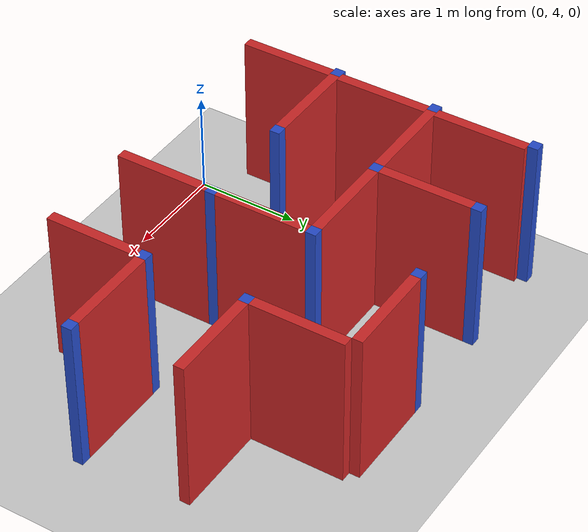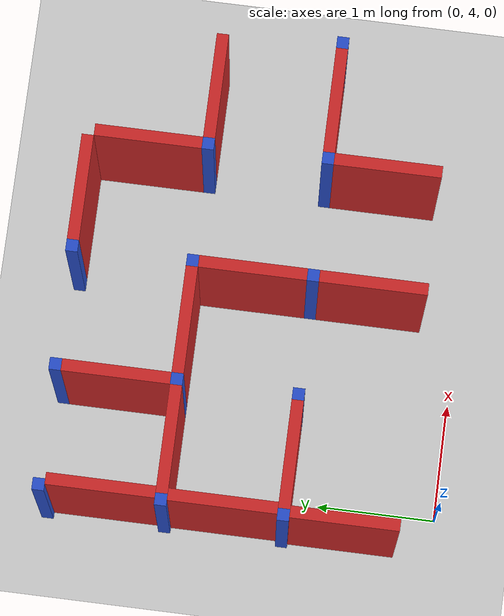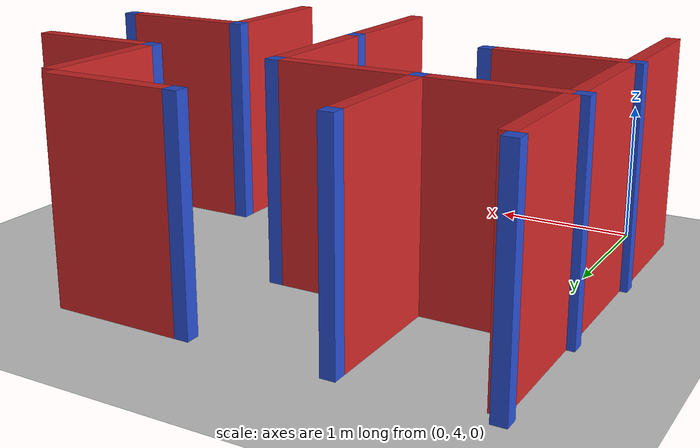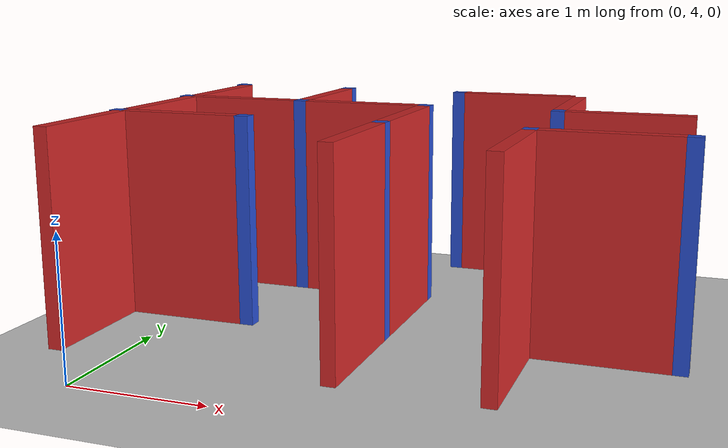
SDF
<sdf version="1.7">
 <world name="default">
  <model name="ground_plane">
   <static>1</static>
   <link name="link">
    <collision name="collision">
     <geometry><plane><normal>0 0 1</normal><size>100 100</size></plane></geometry>
     <surface><friction><ode><mu>100</mu><mu2>50</mu2></ode></friction></surface>
    </collision>
    <visual name="visual">
     <cast_shadows>0</cast_shadows>
     <geometry><plane><normal>0 0 1</normal><size>100 100</size></plane></geometry>
     <material>
      <script><uri>file://media/materials/scripts/gazebo.material</uri><name>Gazebo/Grey</name></script>
     </material>
    </visual>
   </link>
  </model>
  <model name="maze_demo">
   <link name="Joint_5_-10">
    <pose>5 -10 0 0 -0 0</pose>
    <visual name="Wall_2_Visual">
     <pose>0 0 0.75 0 -0 0</pose>
     <geometry><box><size>0.1 0.1 1.5</size></box></geometry>
     <material>
      <script><uri>file://media/materials/scripts/gazebo.material</uri><name>Gazebo/Blue</name></script>
      <ambient>0.996078 0.47451 0.0196078 1</ambient>
      <shader type="pixel"/>
     </material>
     <meta><layer>0</layer></meta>
    </visual>
    <collision name="Wall_2_Collision">
     <pose>0 0 0.75 0 -0 0</pose>
     <geometry><box><size>0.1 0.1 1.5</size></box></geometry>
     <surface>
      <friction>
       <ode><mu>1</mu><mu2>1</mu2><fdir1>0 0 0</fdir1><slip1>0</slip1><slip2>0</slip2></ode>
       <torsional>
        <coefficient>1</coefficient>
        <patch_radius>0</patch_radius>
        <surface_radius>0</surface_radius>
        <use_patch_radius>1</use_patch_radius>
        <ode><slip>0</slip></ode>
       </torsional>
      </friction>
      <bounce><restitution_coefficient>0</restitution_coefficient><threshold>1e+06</threshold></bounce>
      <contact>
       <collide_without_contact>0</collide_without_contact>
       <collide_without_contact_bitmask>1</collide_without_contact_bitmask>
       <collide_bitmask>1</collide_bitmask>
       <ode>
        <soft_cfm>0</soft_cfm>
        <soft_erp>0.2</soft_erp>
        <kp>1e+13</kp>
        <kd>1</kd>
        <max_vel>0.01</max_vel>
        <min_depth>0</min_depth>
       </ode>
       <bullet>
        <split_impulse>1</split_impulse>
        <split_impulse_penetration_threshold>-0.01</split_impulse_penetration_threshold>
        <soft_cfm>0</soft_cfm>
        <soft_erp>0.2</soft_erp>
        <kp>1e+13</kp>
        <kd>1</kd>
       </bullet>
      </contact>
     </surface>
    </collision>
   </link>
   <link name="Joint_5_-8">
    <pose>5 -8 0 0 -0 0</pose>
    <visual name="Wall_2_Visual">
     <pose>0 0 0.75 0 -0 0</pose>
     <geometry><box><size>0.1 0.1 1.5</size></box></geometry>
     <material>
      <script><uri>file://media/materials/scripts/gazebo.material</uri><name>Gazebo/Blue</name></script>
      <ambient>0.996078 0.47451 0.0196078 1</ambient>
      <shader type="pixel"/>
     </material>
     <meta><layer>0</layer></meta>
    </visual>
    <collision name="Wall_2_Collision">
     <pose>0 0 0.75 0 -0 0</pose>
     <geometry><box><size>0.1 0.1 1.5</size></box></geometry>
     <surface>
      <friction>
       <ode><mu>1</mu><mu2>1</mu2><fdir1>0 0 0</fdir1><slip1>0</slip1><slip2>0</slip2></ode>
       <torsional>
        <coefficient>1</coefficient>
        <patch_radius>0</patch_radius>
        <surface_radius>0</surface_radius>
        <use_patch_radius>1</use_patch_radius>
        <ode><slip>0</slip></ode>
       </torsional>
      </friction>
      <bounce><restitution_coefficient>0</restitution_coefficient><threshold>1e+06</threshold></bounce>
      <contact>
       <collide_without_contact>0</collide_without_contact>
       <collide_without_contact_bitmask>1</collide_without_contact_bitmask>
       <collide_bitmask>1</collide_bitmask>
       <ode>
        <soft_cfm>0</soft_cfm>
        <soft_erp>0.2</soft_erp>
        <kp>1e+13</kp>
        <kd>1</kd>
        <max_vel>0.01</max_vel>
        <min_depth>0</min_depth>
       </ode>
       <bullet>
        <split_impulse>1</split_impulse>
        <split_impulse_penetration_threshold>-0.01</split_impulse_penetration_threshold>
        <soft_cfm>0</soft_cfm>
        <soft_erp>0.2</soft_erp>
        <kp>1e+13</kp>
        <kd>1</kd>
       </bullet>
      </contact>
     </surface>
    </collision>
   </link>
   <link name="Joint_5_-9">
    <pose>5 -9 0 0 -0 0</pose>
    <visual name="Wall_2_Visual">
     <pose>0 0 0.75 0 -0 0</pose>
     <geometry><box><size>0.1 0.1 1.5</size></box></geometry>
     <material>
      <script><uri>file://media/materials/scripts/gazebo.material</uri><name>Gazebo/Blue</name></script>
      <ambient>0.996078 0.47451 0.0196078 1</ambient>
      <shader type="pixel"/>
     </material>
     <meta><layer>0</layer></meta>
    </visual>
    <collision name="Wall_2_Collision">
     <pose>0 0 0.75 0 -0 0</pose>
     <geometry><box><size>0.1 0.1 1.5</size></box></geometry>
     <surface>
      <friction>
       <ode><mu>1</mu><mu2>1</mu2><fdir1>0 0 0</fdir1><slip1>0</slip1><slip2>0</slip2></ode>
       <torsional>
        <coefficient>1</coefficient>
        <patch_radius>0</patch_radius>
        <surface_radius>0</surface_radius>
        <use_patch_radius>1</use_patch_radius>
        <ode><slip>0</slip></ode>
       </torsional>
      </friction>
      <bounce><restitution_coefficient>0</restitution_coefficient><threshold>1e+06</threshold></bounce>
      <contact>
       <collide_without_contact>0</collide_without_contact>
       <collide_without_contact_bitmask>1</collide_without_contact_bitmask>
       <collide_bitmask>1</collide_bitmask>
       <ode>
        <soft_cfm>0</soft_cfm>
        <soft_erp>0.2</soft_erp>
        <kp>1e+13</kp>
        <kd>1</kd>
        <max_vel>0.01</max_vel>
        <min_depth>0</min_depth>
       </ode>
       <bullet>
        <split_impulse>1</split_impulse>
        <split_impulse_penetration_threshold>-0.01</split_impulse_penetration_threshold>
        <soft_cfm>0</soft_cfm>
        <soft_erp>0.2</soft_erp>
        <kp>1e+13</kp>
        <kd>1</kd>
       </bullet>
      </contact>
     </surface>
    </collision>
   </link>
   <link name="Joint_6_-10">
    <pose>6 -10 0 0 -0 0</pose>
    <visual name="Wall_2_Visual">
     <pose>0 0 0.75 0 -0 0</pose>
     <geometry><box><size>0.1 0.1 1.5</size></box></geometry>
     <material>
      <script><uri>file://media/materials/scripts/gazebo.material</uri><name>Gazebo/Blue</name></script>
      <ambient>0.996078 0.47451 0.0196078 1</ambient>
      <shader type="pixel"/>
     </material>
     <meta><layer>0</layer></meta>
    </visual>
    <collision name="Wall_2_Collision">
     <pose>0 0 0.75 0 -0 0</pose>
     <geometry><box><size>0.1 0.1 1.5</size></box></geometry>
     <surface>
      <friction>
       <ode><mu>1</mu><mu2>1</mu2><fdir1>0 0 0</fdir1><slip1>0</slip1><slip2>0</slip2></ode>
       <torsional>
        <coefficient>1</coefficient>
        <patch_radius>0</patch_radius>
        <surface_radius>0</surface_radius>
        <use_patch_radius>1</use_patch_radius>
        <ode><slip>0</slip></ode>
       </torsional>
      </friction>
      <bounce><restitution_coefficient>0</restitution_coefficient><threshold>1e+06</threshold></bounce>
      <contact>
       <collide_without_contact>0</collide_without_contact>
       <collide_without_contact_bitmask>1</collide_without_contact_bitmask>
       <collide_bitmask>1</collide_bitmask>
       <ode>
        <soft_cfm>0</soft_cfm>
        <soft_erp>0.2</soft_erp>
        <kp>1e+13</kp>
        <kd>1</kd>
        <max_vel>0.01</max_vel>
        <min_depth>0</min_depth>
       </ode>
       <bullet>
        <split_impulse>1</split_impulse>
        <split_impulse_penetration_threshold>-0.01</split_impulse_penetration_threshold>
        <soft_cfm>0</soft_cfm>
        <soft_erp>0.2</soft_erp>
        <kp>1e+13</kp>
        <kd>1</kd>
       </bullet>
      </contact>
     </surface>
    </collision>
   </link>
   <link name="Joint_6_-8">
    <pose>6 -8 0 0 -0 0</pose>
    <visual name="Wall_2_Visual">
     <pose>0 0 0.75 0 -0 0</pose>
     <geometry><box><size>0.1 0.1 1.5</size></box></geometry>
     <material>
      <script><uri>file://media/materials/scripts/gazebo.material</uri><name>Gazebo/Blue</name></script>
      <ambient>0.996078 0.47451 0.0196078 1</ambient>
      <shader type="pixel"/>
     </material>
     <meta><layer>0</layer></meta>
    </visual>
    <collision name="Wall_2_Collision">
     <pose>0 0 0.75 0 -0 0</pose>
     <geometry><box><size>0.1 0.1 1.5</size></box></geometry>
     <surface>
      <friction>
       <ode><mu>1</mu><mu2>1</mu2><fdir1>0 0 0</fdir1><slip1>0</slip1><slip2>0</slip2></ode>
       <torsional>
        <coefficient>1</coefficient>
        <patch_radius>0</patch_radius>
        <surface_radius>0</surface_radius>
        <use_patch_radius>1</use_patch_radius>
        <ode><slip>0</slip></ode>
       </torsional>
      </friction>
      <bounce><restitution_coefficient>0</restitution_coefficient><threshold>1e+06</threshold></bounce>
      <contact>
       <collide_without_contact>0</collide_without_contact>
       <collide_without_contact_bitmask>1</collide_without_contact_bitmask>
       <collide_bitmask>1</collide_bitmask>
       <ode>
        <soft_cfm>0</soft_cfm>
        <soft_erp>0.2</soft_erp>
        <kp>1e+13</kp>
        <kd>1</kd>
        <max_vel>0.01</max_vel>
        <min_depth>0</min_depth>
       </ode>
       <bullet>
        <split_impulse>1</split_impulse>
        <split_impulse_penetration_threshold>-0.01</split_impulse_penetration_threshold>
        <soft_cfm>0</soft_cfm>
        <soft_erp>0.2</soft_erp>
        <kp>1e+13</kp>
        <kd>1</kd>
       </bullet>
      </contact>
     </surface>
    </collision>
   </link>
   <link name="Joint_6_-9">
    <pose>6 -9 0 0 -0 0</pose>
    <visual name="Wall_2_Visual">
     <pose>0 0 0.75 0 -0 0</pose>
     <geometry><box><size>0.1 0.1 1.5</size></box></geometry>
     <material>
      <script><uri>file://media/materials/scripts/gazebo.material</uri><name>Gazebo/Blue</name></script>
      <ambient>0.996078 0.47451 0.0196078 1</ambient>
      <shader type="pixel"/>
     </material>
     <meta><layer>0</layer></meta>
    </visual>
    <collision name="Wall_2_Collision">
     <pose>0 0 0.75 0 -0 0</pose>
     <geometry><box><size>0.1 0.1 1.5</size></box></geometry>
     <surface>
      <friction>
       <ode><mu>1</mu><mu2>1</mu2><fdir1>0 0 0</fdir1><slip1>0</slip1><slip2>0</slip2></ode>
       <torsional>
        <coefficient>1</coefficient>
        <patch_radius>0</patch_radius>
        <surface_radius>0</surface_radius>
        <use_patch_radius>1</use_patch_radius>
        <ode><slip>0</slip></ode>
       </torsional>
      </friction>
      <bounce><restitution_coefficient>0</restitution_coefficient><threshold>1e+06</threshold></bounce>
      <contact>
       <collide_without_contact>0</collide_without_contact>
       <collide_without_contact_bitmask>1</collide_without_contact_bitmask>
       <collide_bitmask>1</collide_bitmask>
       <ode>
        <soft_cfm>0</soft_cfm>
        <soft_erp>0.2</soft_erp>
        <kp>1e+13</kp>
        <kd>1</kd>
        <max_vel>0.01</max_vel>
        <min_depth>0</min_depth>
       </ode>
       <bullet>
        <split_impulse>1</split_impulse>
        <split_impulse_penetration_threshold>-0.01</split_impulse_penetration_threshold>
        <soft_cfm>0</soft_cfm>
        <soft_erp>0.2</soft_erp>
        <kp>1e+13</kp>
        <kd>1</kd>
       </bullet>
      </contact>
     </surface>
    </collision>
   </link>
   <link name="Joint_7_-10">
    <pose>7 -10 0 0 -0 0</pose>
    <visual name="Wall_2_Visual">
     <pose>0 0 0.75 0 -0 0</pose>
     <geometry><box><size>0.1 0.1 1.5</size></box></geometry>
     <material>
      <script><uri>file://media/materials/scripts/gazebo.material</uri><name>Gazebo/Blue</name></script>
      <ambient>0.996078 0.47451 0.0196078 1</ambient>
      <shader type="pixel"/>
     </material>
     <meta><layer>0</layer></meta>
    </visual>
    <collision name="Wall_2_Collision">
     <pose>0 0 0.75 0 -0 0</pose>
     <geometry><box><size>0.1 0.1 1.5</size></box></geometry>
     <surface>
      <friction>
       <ode><mu>1</mu><mu2>1</mu2><fdir1>0 0 0</fdir1><slip1>0</slip1><slip2>0</slip2></ode>
       <torsional>
        <coefficient>1</coefficient>
        <patch_radius>0</patch_radius>
        <surface_radius>0</surface_radius>
        <use_patch_radius>1</use_patch_radius>
        <ode><slip>0</slip></ode>
       </torsional>
      </friction>
      <bounce><restitution_coefficient>0</restitution_coefficient><threshold>1e+06</threshold></bounce>
      <contact>
       <collide_without_contact>0</collide_without_contact>
       <collide_without_contact_bitmask>1</collide_without_contact_bitmask>
       <collide_bitmask>1</collide_bitmask>
       <ode>
        <soft_cfm>0</soft_cfm>
        <soft_erp>0.2</soft_erp>
        <kp>1e+13</kp>
        <kd>1</kd>
        <max_vel>0.01</max_vel>
        <min_depth>0</min_depth>
       </ode>
       <bullet>
        <split_impulse>1</split_impulse>
        <split_impulse_penetration_threshold>-0.01</split_impulse_penetration_threshold>
        <soft_cfm>0</soft_cfm>
        <soft_erp>0.2</soft_erp>
        <kp>1e+13</kp>
        <kd>1</kd>
       </bullet>
      </contact>
     </surface>
    </collision>
   </link>
   <link name="Joint_7_-8">
    <pose>7 -8 0 0 -0 0</pose>
    <visual name="Wall_2_Visual">
     <pose>0 0 0.75 0 -0 0</pose>
     <geometry><box><size>0.1 0.1 1.5</size></box></geometry>
     <material>
      <script><uri>file://media/materials/scripts/gazebo.material</uri><name>Gazebo/Blue</name></script>
      <ambient>0.996078 0.47451 0.0196078 1</ambient>
      <shader type="pixel"/>
     </material>
     <meta><layer>0</layer></meta>
    </visual>
    <collision name="Wall_2_Collision">
     <pose>0 0 0.75 0 -0 0</pose>
     <geometry><box><size>0.1 0.1 1.5</size></box></geometry>
     <surface>
      <friction>
       <ode><mu>1</mu><mu2>1</mu2><fdir1>0 0 0</fdir1><slip1>0</slip1><slip2>0</slip2></ode>
       <torsional>
        <coefficient>1</coefficient>
        <patch_radius>0</patch_radius>
        <surface_radius>0</surface_radius>
        <use_patch_radius>1</use_patch_radius>
        <ode><slip>0</slip></ode>
       </torsional>
      </friction>
      <bounce><restitution_coefficient>0</restitution_coefficient><threshold>1e+06</threshold></bounce>
      <contact>
       <collide_without_contact>0</collide_without_contact>
       <collide_without_contact_bitmask>1</collide_without_contact_bitmask>
       <collide_bitmask>1</collide_bitmask>
       <ode>
        <soft_cfm>0</soft_cfm>
        <soft_erp>0.2</soft_erp>
        <kp>1e+13</kp>
        <kd>1</kd>
        <max_vel>0.01</max_vel>
        <min_depth>0</min_depth>
       </ode>
       <bullet>
        <split_impulse>1</split_impulse>
        <split_impulse_penetration_threshold>-0.01</split_impulse_penetration_threshold>
        <soft_cfm>0</soft_cfm>
        <soft_erp>0.2</soft_erp>
        <kp>1e+13</kp>
        <kd>1</kd>
       </bullet>
      </contact>
     </surface>
    </collision>
   </link>
   <link name="Joint_7_-9">
    <pose>7 -9 0 0 -0 0</pose>
    <visual name="Wall_2_Visual">
     <pose>0 0 0.75 0 -0 0</pose>
     <geometry><box><size>0.1 0.1 1.5</size></box></geometry>
     <material>
      <script><uri>file://media/materials/scripts/gazebo.material</uri><name>Gazebo/Blue</name></script>
      <ambient>0.996078 0.47451 0.0196078 1</ambient>
      <shader type="pixel"/>
     </material>
     <meta><layer>0</layer></meta>
    </visual>
    <collision name="Wall_2_Collision">
     <pose>0 0 0.75 0 -0 0</pose>
     <geometry><box><size>0.1 0.1 1.5</size></box></geometry>
     <surface>
      <friction>
       <ode><mu>1</mu><mu2>1</mu2><fdir1>0 0 0</fdir1><slip1>0</slip1><slip2>0</slip2></ode>
       <torsional>
        <coefficient>1</coefficient>
        <patch_radius>0</patch_radius>
        <surface_radius>0</surface_radius>
        <use_patch_radius>1</use_patch_radius>
        <ode><slip>0</slip></ode>
       </torsional>
      </friction>
      <bounce><restitution_coefficient>0</restitution_coefficient><threshold>1e+06</threshold></bounce>
      <contact>
       <collide_without_contact>0</collide_without_contact>
       <collide_without_contact_bitmask>1</collide_without_contact_bitmask>
       <collide_bitmask>1</collide_bitmask>
       <ode>
        <soft_cfm>0</soft_cfm>
        <soft_erp>0.2</soft_erp>
        <kp>1e+13</kp>
        <kd>1</kd>
        <max_vel>0.01</max_vel>
        <min_depth>0</min_depth>
       </ode>
       <bullet>
        <split_impulse>1</split_impulse>
        <split_impulse_penetration_threshold>-0.01</split_impulse_penetration_threshold>
        <soft_cfm>0</soft_cfm>
        <soft_erp>0.2</soft_erp>
        <kp>1e+13</kp>
        <kd>1</kd>
       </bullet>
      </contact>
     </surface>
    </collision>
   </link>
   <link name="Joint_8_-10">
    <pose>8 -10 0 0 -0 0</pose>
    <visual name="Wall_2_Visual">
     <pose>0 0 0.75 0 -0 0</pose>
     <geometry><box><size>0.1 0.1 1.5</size></box></geometry>
     <material>
      <script><uri>file://media/materials/scripts/gazebo.material</uri><name>Gazebo/Blue</name></script>
      <ambient>0.996078 0.47451 0.0196078 1</ambient>
      <shader type="pixel"/>
     </material>
     <meta><layer>0</layer></meta>
    </visual>
    <collision name="Wall_2_Collision">
     <pose>0 0 0.75 0 -0 0</pose>
     <geometry><box><size>0.1 0.1 1.5</size></box></geometry>
     <surface>
      <friction>
       <ode><mu>1</mu><mu2>1</mu2><fdir1>0 0 0</fdir1><slip1>0</slip1><slip2>0</slip2></ode>
       <torsional>
        <coefficient>1</coefficient>
        <patch_radius>0</patch_radius>
        <surface_radius>0</surface_radius>
        <use_patch_radius>1</use_patch_radius>
        <ode><slip>0</slip></ode>
       </torsional>
      </friction>
      <bounce><restitution_coefficient>0</restitution_coefficient><threshold>1e+06</threshold></bounce>
      <contact>
       <collide_without_contact>0</collide_without_contact>
       <collide_without_contact_bitmask>1</collide_without_contact_bitmask>
       <collide_bitmask>1</collide_bitmask>
       <ode>
        <soft_cfm>0</soft_cfm>
        <soft_erp>0.2</soft_erp>
        <kp>1e+13</kp>
        <kd>1</kd>
        <max_vel>0.01</max_vel>
        <min_depth>0</min_depth>
       </ode>
       <bullet>
        <split_impulse>1</split_impulse>
        <split_impulse_penetration_threshold>-0.01</split_impulse_penetration_threshold>
        <soft_cfm>0</soft_cfm>
        <soft_erp>0.2</soft_erp>
        <kp>1e+13</kp>
        <kd>1</kd>
       </bullet>
      </contact>
     </surface>
    </collision>
   </link>
   <link name="Joint_8_-9">
    <pose>8 -9 0 0 -0 0</pose>
    <visual name="Wall_2_Visual">
     <pose>0 0 0.75 0 -0 0</pose>
     <geometry><box><size>0.1 0.1 1.5</size></box></geometry>
     <material>
      <script><uri>file://media/materials/scripts/gazebo.material</uri><name>Gazebo/Blue</name></script>
      <ambient>0.996078 0.47451 0.0196078 1</ambient>
      <shader type="pixel"/>
     </material>
     <meta><layer>0</layer></meta>
    </visual>
    <collision name="Wall_2_Collision">
     <pose>0 0 0.75 0 -0 0</pose>
     <geometry><box><size>0.1 0.1 1.5</size></box></geometry>
     <surface>
      <friction>
       <ode><mu>1</mu><mu2>1</mu2><fdir1>0 0 0</fdir1><slip1>0</slip1><slip2>0</slip2></ode>
       <torsional>
        <coefficient>1</coefficient>
        <patch_radius>0</patch_radius>
        <surface_radius>0</surface_radius>
        <use_patch_radius>1</use_patch_radius>
        <ode><slip>0</slip></ode>
       </torsional>
      </friction>
      <bounce><restitution_coefficient>0</restitution_coefficient><threshold>1e+06</threshold></bounce>
      <contact>
       <collide_without_contact>0</collide_without_contact>
       <collide_without_contact_bitmask>1</collide_without_contact_bitmask>
       <collide_bitmask>1</collide_bitmask>
       <ode>
        <soft_cfm>0</soft_cfm>
        <soft_erp>0.2</soft_erp>
        <kp>1e+13</kp>
        <kd>1</kd>
        <max_vel>0.01</max_vel>
        <min_depth>0</min_depth>
       </ode>
       <bullet>
        <split_impulse>1</split_impulse>
        <split_impulse_penetration_threshold>-0.01</split_impulse_penetration_threshold>
        <soft_cfm>0</soft_cfm>
        <soft_erp>0.2</soft_erp>
        <kp>1e+13</kp>
        <kd>1</kd>
       </bullet>
      </contact>
     </surface>
    </collision>
   </link>
   <link name="Joint_9_-10">
    <pose>9 -10 0 0 -0 0</pose>
    <visual name="Wall_2_Visual">
     <pose>0 0 0.75 0 -0 0</pose>
     <geometry><box><size>0.1 0.1 1.5</size></box></geometry>
     <material>
      <script><uri>file://media/materials/scripts/gazebo.material</uri><name>Gazebo/Blue</name></script>
      <ambient>0.996078 0.47451 0.0196078 1</ambient>
      <shader type="pixel"/>
     </material>
     <meta><layer>0</layer></meta>
    </visual>
    <collision name="Wall_2_Collision">
     <pose>0 0 0.75 0 -0 0</pose>
     <geometry><box><size>0.1 0.1 1.5</size></box></geometry>
     <surface>
      <friction>
       <ode><mu>1</mu><mu2>1</mu2><fdir1>0 0 0</fdir1><slip1>0</slip1><slip2>0</slip2></ode>
       <torsional>
        <coefficient>1</coefficient>
        <patch_radius>0</patch_radius>
        <surface_radius>0</surface_radius>
        <use_patch_radius>1</use_patch_radius>
        <ode><slip>0</slip></ode>
       </torsional>
      </friction>
      <bounce><restitution_coefficient>0</restitution_coefficient><threshold>1e+06</threshold></bounce>
      <contact>
       <collide_without_contact>0</collide_without_contact>
       <collide_without_contact_bitmask>1</collide_without_contact_bitmask>
       <collide_bitmask>1</collide_bitmask>
       <ode>
        <soft_cfm>0</soft_cfm>
        <soft_erp>0.2</soft_erp>
        <kp>1e+13</kp>
        <kd>1</kd>
        <max_vel>0.01</max_vel>
        <min_depth>0</min_depth>
       </ode>
       <bullet>
        <split_impulse>1</split_impulse>
        <split_impulse_penetration_threshold>-0.01</split_impulse_penetration_threshold>
        <soft_cfm>0</soft_cfm>
        <soft_erp>0.2</soft_erp>
        <kp>1e+13</kp>
        <kd>1</kd>
       </bullet>
      </contact>
     </surface>
    </collision>
   </link>
   <link name="Wall_2_9_v">
    <pose>5.04815 -9.49999 0 0 -0 1.5708</pose>
    <visual name="Wall_0_Visual">
     <pose>0 0 0.75 0 -0 0</pose>
     <geometry><box><size>0.9 0.1 1.5</size></box></geometry>
     <material>
      <script><uri>file://media/materials/scripts/gazebo.material</uri><name>Gazebo/Red</name></script>
      <ambient>0.921569 0.807843 0.615686 1</ambient>
      <shader type="pixel"/>
     </material>
     <meta><layer>0</layer></meta>
    </visual>
    <collision name="Wall_0_Collision">
     <pose>0 0 0.75 0 -0 0</pose>
     <geometry><box><size>0.9 0.1 1.5</size></box></geometry>
     <surface>
      <friction>
       <ode><mu>1</mu><mu2>1</mu2><fdir1>0 0 0</fdir1><slip1>0</slip1><slip2>0</slip2></ode>
       <torsional>
        <coefficient>1</coefficient>
        <patch_radius>0</patch_radius>
        <surface_radius>0</surface_radius>
        <use_patch_radius>1</use_patch_radius>
        <ode><slip>0</slip></ode>
       </torsional>
      </friction>
      <bounce><restitution_coefficient>0</restitution_coefficient><threshold>1e+06</threshold></bounce>
      <contact>
       <collide_without_contact>0</collide_without_contact>
       <collide_without_contact_bitmask>1</collide_without_contact_bitmask>
       <collide_bitmask>1</collide_bitmask>
       <ode>
        <soft_cfm>0</soft_cfm>
        <soft_erp>0.2</soft_erp>
        <kp>1e+13</kp>
        <kd>1</kd>
        <max_vel>0.01</max_vel>
        <min_depth>0</min_depth>
       </ode>
       <bullet>
        <split_impulse>1</split_impulse>
        <split_impulse_penetration_threshold>-0.01</split_impulse_penetration_threshold>
        <soft_cfm>0</soft_cfm>
        <soft_erp>0.2</soft_erp>
        <kp>1e+13</kp>
        <kd>1</kd>
       </bullet>
      </contact>
     </surface>
    </collision>
   </link>
   <link name="Wall_3_8_v">
    <pose>5.05369 -8.49999 0 0 -0 1.5708</pose>
    <visual name="Wall_0_Visual">
     <pose>0 0 0.75 0 -0 0</pose>
     <geometry><box><size>0.9 0.1 1.5</size></box></geometry>
     <material>
      <script><uri>file://media/materials/scripts/gazebo.material</uri><name>Gazebo/Red</name></script>
      <ambient>0.921569 0.807843 0.615686 1</ambient>
      <shader type="pixel"/>
     </material>
     <meta><layer>0</layer></meta>
    </visual>
    <collision name="Wall_0_Collision">
     <pose>0 0 0.75 0 -0 0</pose>
     <geometry><box><size>0.9 0.1 1.5</size></box></geometry>
     <surface>
      <friction>
       <ode><mu>1</mu><mu2>1</mu2><fdir1>0 0 0</fdir1><slip1>0</slip1><slip2>0</slip2></ode>
       <torsional>
        <coefficient>1</coefficient>
        <patch_radius>0</patch_radius>
        <surface_radius>0</surface_radius>
        <use_patch_radius>1</use_patch_radius>
        <ode><slip>0</slip></ode>
       </torsional>
      </friction>
      <bounce><restitution_coefficient>0</restitution_coefficient><threshold>1e+06</threshold></bounce>
      <contact>
       <collide_without_contact>0</collide_without_contact>
       <collide_without_contact_bitmask>1</collide_without_contact_bitmask>
       <collide_bitmask>1</collide_bitmask>
       <ode>
        <soft_cfm>0</soft_cfm>
        <soft_erp>0.2</soft_erp>
        <kp>1e+13</kp>
        <kd>1</kd>
        <max_vel>0.01</max_vel>
        <min_depth>0</min_depth>
       </ode>
       <bullet>
        <split_impulse>1</split_impulse>
        <split_impulse_penetration_threshold>-0.01</split_impulse_penetration_threshold>
        <soft_cfm>0</soft_cfm>
        <soft_erp>0.2</soft_erp>
        <kp>1e+13</kp>
        <kd>1</kd>
       </bullet>
      </contact>
     </surface>
    </collision>
   </link>
   <link name="Wall_4_10_v">
    <pose>5.03249 -10.5 0 0 -0 1.5708</pose>
    <visual name="Wall_0_Visual">
     <pose>0 0 0.75 0 -0 0</pose>
     <geometry><box><size>0.9 0.1 1.5</size></box></geometry>
     <material>
      <script><uri>file://media/materials/scripts/gazebo.material</uri><name>Gazebo/Red</name></script>
      <ambient>0.921569 0.807843 0.615686 1</ambient>
      <shader type="pixel"/>
     </material>
     <meta><layer>0</layer></meta>
    </visual>
    <collision name="Wall_0_Collision">
     <pose>0 0 0.75 0 -0 0</pose>
     <geometry><box><size>0.9 0.1 1.5</size></box></geometry>
     <surface>
      <friction>
       <ode><mu>1</mu><mu2>1</mu2><fdir1>0 0 0</fdir1><slip1>0</slip1><slip2>0</slip2></ode>
       <torsional>
        <coefficient>1</coefficient>
        <patch_radius>0</patch_radius>
        <surface_radius>0</surface_radius>
        <use_patch_radius>1</use_patch_radius>
        <ode><slip>0</slip></ode>
       </torsional>
      </friction>
      <bounce><restitution_coefficient>0</restitution_coefficient><threshold>1e+06</threshold></bounce>
      <contact>
       <collide_without_contact>0</collide_without_contact>
       <collide_without_contact_bitmask>1</collide_without_contact_bitmask>
       <collide_bitmask>1</collide_bitmask>
       <ode>
        <soft_cfm>0</soft_cfm>
        <soft_erp>0.2</soft_erp>
        <kp>1e+13</kp>
        <kd>1</kd>
        <max_vel>0.01</max_vel>
        <min_depth>0</min_depth>
       </ode>
       <bullet>
        <split_impulse>1</split_impulse>
        <split_impulse_penetration_threshold>-0.01</split_impulse_penetration_threshold>
        <soft_cfm>0</soft_cfm>
        <soft_erp>0.2</soft_erp>
        <kp>1e+13</kp>
        <kd>1</kd>
       </bullet>
      </contact>
     </surface>
    </collision>
   </link>
   <link name="Wall_5_10_h">
    <pose>5.5 -10 0 0 -0 0</pose>
    <visual name="Wall_0_Visual">
     <pose>0 0 0.75 0 -0 0</pose>
     <geometry><box><size>0.9 0.1 1.5</size></box></geometry>
     <material>
      <script><uri>file://media/materials/scripts/gazebo.material</uri><name>Gazebo/Red</name></script>
      <ambient>0.921569 0.807843 0.615686 1</ambient>
      <shader type="pixel"/>
     </material>
     <meta><layer>0</layer></meta>
    </visual>
    <collision name="Wall_0_Collision">
     <pose>0 0 0.75 0 -0 0</pose>
     <geometry><box><size>0.9 0.1 1.5</size></box></geometry>
     <surface>
      <friction>
       <ode><mu>1</mu><mu2>1</mu2><fdir1>0 0 0</fdir1><slip1>0</slip1><slip2>0</slip2></ode>
       <torsional>
        <coefficient>1</coefficient>
        <patch_radius>0</patch_radius>
        <surface_radius>0</surface_radius>
        <use_patch_radius>1</use_patch_radius>
        <ode><slip>0</slip></ode>
       </torsional>
      </friction>
      <bounce><restitution_coefficient>0</restitution_coefficient><threshold>1e+06</threshold></bounce>
      <contact>
       <collide_without_contact>0</collide_without_contact>
       <collide_without_contact_bitmask>1</collide_without_contact_bitmask>
       <collide_bitmask>1</collide_bitmask>
       <ode>
        <soft_cfm>0</soft_cfm>
        <soft_erp>0.2</soft_erp>
        <kp>1e+13</kp>
        <kd>1</kd>
        <max_vel>0.01</max_vel>
        <min_depth>0</min_depth>
       </ode>
       <bullet>
        <split_impulse>1</split_impulse>
        <split_impulse_penetration_threshold>-0.01</split_impulse_penetration_threshold>
        <soft_cfm>0</soft_cfm>
        <soft_erp>0.2</soft_erp>
        <kp>1e+13</kp>
        <kd>1</kd>
       </bullet>
      </contact>
     </surface>
    </collision>
   </link>
   <link name="Wall_5_9_h">
    <pose>5.5 -9 0 0 -0 0</pose>
    <visual name="Wall_0_Visual">
     <pose>0 0 0.75 0 -0 0</pose>
     <geometry><box><size>0.9 0.1 1.5</size></box></geometry>
     <material>
      <script><uri>file://media/materials/scripts/gazebo.material</uri><name>Gazebo/Red</name></script>
      <ambient>0.921569 0.807843 0.615686 1</ambient>
      <shader type="pixel"/>
     </material>
     <meta><layer>0</layer></meta>
    </visual>
    <collision name="Wall_0_Collision">
     <pose>0 0 0.75 0 -0 0</pose>
     <geometry><box><size>0.9 0.1 1.5</size></box></geometry>
     <surface>
      <friction>
       <ode><mu>1</mu><mu2>1</mu2><fdir1>0 0 0</fdir1><slip1>0</slip1><slip2>0</slip2></ode>
       <torsional>
        <coefficient>1</coefficient>
        <patch_radius>0</patch_radius>
        <surface_radius>0</surface_radius>
        <use_patch_radius>1</use_patch_radius>
        <ode><slip>0</slip></ode>
       </torsional>
      </friction>
      <bounce><restitution_coefficient>0</restitution_coefficient><threshold>1e+06</threshold></bounce>
      <contact>
       <collide_without_contact>0</collide_without_contact>
       <collide_without_contact_bitmask>1</collide_without_contact_bitmask>
       <collide_bitmask>1</collide_bitmask>
       <ode>
        <soft_cfm>0</soft_cfm>
        <soft_erp>0.2</soft_erp>
        <kp>1e+13</kp>
        <kd>1</kd>
        <max_vel>0.01</max_vel>
        <min_depth>0</min_depth>
       </ode>
       <bullet>
        <split_impulse>1</split_impulse>
        <split_impulse_penetration_threshold>-0.01</split_impulse_penetration_threshold>
        <soft_cfm>0</soft_cfm>
        <soft_erp>0.2</soft_erp>
        <kp>1e+13</kp>
        <kd>1</kd>
       </bullet>
      </contact>
     </surface>
    </collision>
   </link>
   <link name="Wall_6_8_v">
    <pose>6 -8.5 0 0 -0 1.5708</pose>
    <visual name="Wall_0_Visual">
     <pose>0 0 0.75 0 -0 0</pose>
     <geometry><box><size>0.9 0.1 1.5</size></box></geometry>
     <material>
      <script><uri>file://media/materials/scripts/gazebo.material</uri><name>Gazebo/Red</name></script>
      <ambient>0.921569 0.807843 0.615686 1</ambient>
      <shader type="pixel"/>
     </material>
     <meta><layer>0</layer></meta>
    </visual>
    <collision name="Wall_0_Collision">
     <pose>0 0 0.75 0 -0 0</pose>
     <geometry><box><size>0.9 0.1 1.5</size></box></geometry>
     <surface>
      <friction>
       <ode><mu>1</mu><mu2>1</mu2><fdir1>0 0 0</fdir1><slip1>0</slip1><slip2>0</slip2></ode>
       <torsional>
        <coefficient>1</coefficient>
        <patch_radius>0</patch_radius>
        <surface_radius>0</surface_radius>
        <use_patch_radius>1</use_patch_radius>
        <ode><slip>0</slip></ode>
       </torsional>
      </friction>
      <bounce><restitution_coefficient>0</restitution_coefficient><threshold>1e+06</threshold></bounce>
      <contact>
       <collide_without_contact>0</collide_without_contact>
       <collide_without_contact_bitmask>1</collide_without_contact_bitmask>
       <collide_bitmask>1</collide_bitmask>
       <ode>
        <soft_cfm>0</soft_cfm>
        <soft_erp>0.2</soft_erp>
        <kp>1e+13</kp>
        <kd>1</kd>
        <max_vel>0.01</max_vel>
        <min_depth>0</min_depth>
       </ode>
       <bullet>
        <split_impulse>1</split_impulse>
        <split_impulse_penetration_threshold>-0.01</split_impulse_penetration_threshold>
        <soft_cfm>0</soft_cfm>
        <soft_erp>0.2</soft_erp>
        <kp>1e+13</kp>
        <kd>1</kd>
       </bullet>
      </contact>
     </surface>
    </collision>
   </link>
   <link name="Wall_6_9_h">
    <pose>6.5 -9 0 0 -0 0</pose>
    <visual name="Wall_0_Visual">
     <pose>0 0 0.75 0 -0 0</pose>
     <geometry><box><size>0.9 0.1 1.5</size></box></geometry>
     <material>
      <script><uri>file://media/materials/scripts/gazebo.material</uri><name>Gazebo/Red</name></script>
      <ambient>0.921569 0.807843 0.615686 1</ambient>
      <shader type="pixel"/>
     </material>
     <meta><layer>0</layer></meta>
    </visual>
    <collision name="Wall_0_Collision">
     <pose>0 0 0.75 0 -0 0</pose>
     <geometry><box><size>0.9 0.1 1.5</size></box></geometry>
     <surface>
      <friction>
       <ode><mu>1</mu><mu2>1</mu2><fdir1>0 0 0</fdir1><slip1>0</slip1><slip2>0</slip2></ode>
       <torsional>
        <coefficient>1</coefficient>
        <patch_radius>0</patch_radius>
        <surface_radius>0</surface_radius>
        <use_patch_radius>1</use_patch_radius>
        <ode><slip>0</slip></ode>
       </torsional>
      </friction>
      <bounce><restitution_coefficient>0</restitution_coefficient><threshold>1e+06</threshold></bounce>
      <contact>
       <collide_without_contact>0</collide_without_contact>
       <collide_without_contact_bitmask>1</collide_without_contact_bitmask>
       <collide_bitmask>1</collide_bitmask>
       <ode>
        <soft_cfm>0</soft_cfm>
        <soft_erp>0.2</soft_erp>
        <kp>1e+13</kp>
        <kd>1</kd>
        <max_vel>0.01</max_vel>
        <min_depth>0</min_depth>
       </ode>
       <bullet>
        <split_impulse>1</split_impulse>
        <split_impulse_penetration_threshold>-0.01</split_impulse_penetration_threshold>
        <soft_cfm>0</soft_cfm>
        <soft_erp>0.2</soft_erp>
        <kp>1e+13</kp>
        <kd>1</kd>
       </bullet>
      </contact>
     </surface>
    </collision>
   </link>
   <link name="Wall_7_10_v">
    <pose>7 -10.5 0 0 -0 1.5708</pose>
    <visual name="Wall_0_Visual">
     <pose>0 0 0.75 0 -0 0</pose>
     <geometry><box><size>0.9 0.1 1.5</size></box></geometry>
     <material>
      <script><uri>file://media/materials/scripts/gazebo.material</uri><name>Gazebo/Red</name></script>
      <ambient>0.921569 0.807843 0.615686 1</ambient>
      <shader type="pixel"/>
     </material>
     <meta><layer>0</layer></meta>
    </visual>
    <collision name="Wall_0_Collision">
     <pose>0 0 0.75 0 -0 0</pose>
     <geometry><box><size>0.9 0.1 1.5</size></box></geometry>
     <surface>
      <friction>
       <ode><mu>1</mu><mu2>1</mu2><fdir1>0 0 0</fdir1><slip1>0</slip1><slip2>0</slip2></ode>
       <torsional>
        <coefficient>1</coefficient>
        <patch_radius>0</patch_radius>
        <surface_radius>0</surface_radius>
        <use_patch_radius>1</use_patch_radius>
        <ode><slip>0</slip></ode>
       </torsional>
      </friction>
      <bounce><restitution_coefficient>0</restitution_coefficient><threshold>1e+06</threshold></bounce>
      <contact>
       <collide_without_contact>0</collide_without_contact>
       <collide_without_contact_bitmask>1</collide_without_contact_bitmask>
       <collide_bitmask>1</collide_bitmask>
       <ode>
        <soft_cfm>0</soft_cfm>
        <soft_erp>0.2</soft_erp>
        <kp>1e+13</kp>
        <kd>1</kd>
        <max_vel>0.01</max_vel>
        <min_depth>0</min_depth>
       </ode>
       <bullet>
        <split_impulse>1</split_impulse>
        <split_impulse_penetration_threshold>-0.01</split_impulse_penetration_threshold>
        <soft_cfm>0</soft_cfm>
        <soft_erp>0.2</soft_erp>
        <kp>1e+13</kp>
        <kd>1</kd>
       </bullet>
      </contact>
     </surface>
    </collision>
   </link>
   <link name="Wall_7_8_h">
    <pose>7.5 -8 0 0 -0 0</pose>
    <visual name="Wall_0_Visual">
     <pose>0 0 0.75 0 -0 0</pose>
     <geometry><box><size>0.9 0.1 1.5</size></box></geometry>
     <material>
      <script><uri>file://media/materials/scripts/gazebo.material</uri><name>Gazebo/Red</name></script>
      <ambient>0.921569 0.807843 0.615686 1</ambient>
      <shader type="pixel"/>
     </material>
     <meta><layer>0</layer></meta>
    </visual>
    <collision name="Wall_0_Collision">
     <pose>0 0 0.75 0 -0 0</pose>
     <geometry><box><size>0.9 0.1 1.5</size></box></geometry>
     <surface>
      <friction>
       <ode><mu>1</mu><mu2>1</mu2><fdir1>0 0 0</fdir1><slip1>0</slip1><slip2>0</slip2></ode>
       <torsional>
        <coefficient>1</coefficient>
        <patch_radius>0</patch_radius>
        <surface_radius>0</surface_radius>
        <use_patch_radius>1</use_patch_radius>
        <ode><slip>0</slip></ode>
       </torsional>
      </friction>
      <bounce><restitution_coefficient>0</restitution_coefficient><threshold>1e+06</threshold></bounce>
      <contact>
       <collide_without_contact>0</collide_without_contact>
       <collide_without_contact_bitmask>1</collide_without_contact_bitmask>
       <collide_bitmask>1</collide_bitmask>
       <ode>
        <soft_cfm>0</soft_cfm>
        <soft_erp>0.2</soft_erp>
        <kp>1e+13</kp>
        <kd>1</kd>
        <max_vel>0.01</max_vel>
        <min_depth>0</min_depth>
       </ode>
       <bullet>
        <split_impulse>1</split_impulse>
        <split_impulse_penetration_threshold>-0.01</split_impulse_penetration_threshold>
        <soft_cfm>0</soft_cfm>
        <soft_erp>0.2</soft_erp>
        <kp>1e+13</kp>
        <kd>1</kd>
       </bullet>
      </contact>
     </surface>
    </collision>
   </link>
   <link name="Wall_7_9_v">
    <pose>7 -9.5 0 0 -0 1.5708</pose>
    <visual name="Wall_0_Visual">
     <pose>0 0 0.75 0 -0 0</pose>
     <geometry><box><size>0.9 0.1 1.5</size></box></geometry>
     <material>
      <script><uri>file://media/materials/scripts/gazebo.material</uri><name>Gazebo/Red</name></script>
      <ambient>0.921569 0.807843 0.615686 1</ambient>
      <shader type="pixel"/>
     </material>
     <meta><layer>0</layer></meta>
    </visual>
    <collision name="Wall_0_Collision">
     <pose>0 0 0.75 0 -0 0</pose>
     <geometry><box><size>0.9 0.1 1.5</size></box></geometry>
     <surface>
      <friction>
       <ode><mu>1</mu><mu2>1</mu2><fdir1>0 0 0</fdir1><slip1>0</slip1><slip2>0</slip2></ode>
       <torsional>
        <coefficient>1</coefficient>
        <patch_radius>0</patch_radius>
        <surface_radius>0</surface_radius>
        <use_patch_radius>1</use_patch_radius>
        <ode><slip>0</slip></ode>
       </torsional>
      </friction>
      <bounce><restitution_coefficient>0</restitution_coefficient><threshold>1e+06</threshold></bounce>
      <contact>
       <collide_without_contact>0</collide_without_contact>
       <collide_without_contact_bitmask>1</collide_without_contact_bitmask>
       <collide_bitmask>1</collide_bitmask>
       <ode>
        <soft_cfm>0</soft_cfm>
        <soft_erp>0.2</soft_erp>
        <kp>1e+13</kp>
        <kd>1</kd>
        <max_vel>0.01</max_vel>
        <min_depth>0</min_depth>
       </ode>
       <bullet>
        <split_impulse>1</split_impulse>
        <split_impulse_penetration_threshold>-0.01</split_impulse_penetration_threshold>
        <soft_cfm>0</soft_cfm>
        <soft_erp>0.2</soft_erp>
        <kp>1e+13</kp>
        <kd>1</kd>
       </bullet>
      </contact>
     </surface>
    </collision>
   </link>
   <link name="Wall_8_10_h">
    <pose>8.5 -10 0 0 -0 0</pose>
    <visual name="Wall_0_Visual">
     <pose>0 0 0.75 0 -0 0</pose>
     <geometry><box><size>0.9 0.1 1.5</size></box></geometry>
     <material>
      <script><uri>file://media/materials/scripts/gazebo.material</uri><name>Gazebo/Red</name></script>
      <ambient>0.921569 0.807843 0.615686 1</ambient>
      <shader type="pixel"/>
     </material>
     <meta><layer>0</layer></meta>
    </visual>
    <collision name="Wall_0_Collision">
     <pose>0 0 0.75 0 -0 0</pose>
     <geometry><box><size>0.9 0.1 1.5</size></box></geometry>
     <surface>
      <friction>
       <ode><mu>1</mu><mu2>1</mu2><fdir1>0 0 0</fdir1><slip1>0</slip1><slip2>0</slip2></ode>
       <torsional>
        <coefficient>1</coefficient>
        <patch_radius>0</patch_radius>
        <surface_radius>0</surface_radius>
        <use_patch_radius>1</use_patch_radius>
        <ode><slip>0</slip></ode>
       </torsional>
      </friction>
      <bounce><restitution_coefficient>0</restitution_coefficient><threshold>1e+06</threshold></bounce>
      <contact>
       <collide_without_contact>0</collide_without_contact>
       <collide_without_contact_bitmask>1</collide_without_contact_bitmask>
       <collide_bitmask>1</collide_bitmask>
       <ode>
        <soft_cfm>0</soft_cfm>
        <soft_erp>0.2</soft_erp>
        <kp>1e+13</kp>
        <kd>1</kd>
        <max_vel>0.01</max_vel>
        <min_depth>0</min_depth>
       </ode>
       <bullet>
        <split_impulse>1</split_impulse>
        <split_impulse_penetration_threshold>-0.01</split_impulse_penetration_threshold>
        <soft_cfm>0</soft_cfm>
        <soft_erp>0.2</soft_erp>
        <kp>1e+13</kp>
        <kd>1</kd>
       </bullet>
      </contact>
     </surface>
    </collision>
   </link>
   <link name="Wall_8_10_v">
    <pose>8 -10.5 0 0 -0 1.5708</pose>
    <visual name="Wall_0_Visual">
     <pose>0 0 0.75 0 -0 0</pose>
     <geometry><box><size>0.9 0.1 1.5</size></box></geometry>
     <material>
      <script><uri>file://media/materials/scripts/gazebo.material</uri><name>Gazebo/Red</name></script>
      <ambient>0.921569 0.807843 0.615686 1</ambient>
      <shader type="pixel"/>
     </material>
     <meta><layer>0</layer></meta>
    </visual>
    <collision name="Wall_0_Collision">
     <pose>0 0 0.75 0 -0 0</pose>
     <geometry><box><size>0.9 0.1 1.5</size></box></geometry>
     <surface>
      <friction>
       <ode><mu>1</mu><mu2>1</mu2><fdir1>0 0 0</fdir1><slip1>0</slip1><slip2>0</slip2></ode>
       <torsional>
        <coefficient>1</coefficient>
        <patch_radius>0</patch_radius>
        <surface_radius>0</surface_radius>
        <use_patch_radius>1</use_patch_radius>
        <ode><slip>0</slip></ode>
       </torsional>
      </friction>
      <bounce><restitution_coefficient>0</restitution_coefficient><threshold>1e+06</threshold></bounce>
      <contact>
       <collide_without_contact>0</collide_without_contact>
       <collide_without_contact_bitmask>1</collide_without_contact_bitmask>
       <collide_bitmask>1</collide_bitmask>
       <ode>
        <soft_cfm>0</soft_cfm>
        <soft_erp>0.2</soft_erp>
        <kp>1e+13</kp>
        <kd>1</kd>
        <max_vel>0.01</max_vel>
        <min_depth>0</min_depth>
       </ode>
       <bullet>
        <split_impulse>1</split_impulse>
        <split_impulse_penetration_threshold>-0.01</split_impulse_penetration_threshold>
        <soft_cfm>0</soft_cfm>
        <soft_erp>0.2</soft_erp>
        <kp>1e+13</kp>
        <kd>1</kd>
       </bullet>
      </contact>
     </surface>
    </collision>
   </link>
   <link name="Wall_8_8_v">
    <pose>8 -8.5 0 0 -0 1.5708</pose>
    <visual name="Wall_0_Visual">
     <pose>0 0 0.75 0 -0 0</pose>
     <geometry><box><size>0.9 0.1 1.5</size></box></geometry>
     <material>
      <script><uri>file://media/materials/scripts/gazebo.material</uri><name>Gazebo/Red</name></script>
      <ambient>0.921569 0.807843 0.615686 1</ambient>
      <shader type="pixel"/>
     </material>
     <meta><layer>0</layer></meta>
    </visual>
    <collision name="Wall_0_Collision">
     <pose>0 0 0.75 0 -0 0</pose>
     <geometry><box><size>0.9 0.1 1.5</size></box></geometry>
     <surface>
      <friction>
       <ode><mu>1</mu><mu2>1</mu2><fdir1>0 0 0</fdir1><slip1>0</slip1><slip2>0</slip2></ode>
       <torsional>
        <coefficient>1</coefficient>
        <patch_radius>0</patch_radius>
        <surface_radius>0</surface_radius>
        <use_patch_radius>1</use_patch_radius>
        <ode><slip>0</slip></ode>
       </torsional>
      </friction>
      <bounce><restitution_coefficient>0</restitution_coefficient><threshold>1e+06</threshold></bounce>
      <contact>
       <collide_without_contact>0</collide_without_contact>
       <collide_without_contact_bitmask>1</collide_without_contact_bitmask>
       <collide_bitmask>1</collide_bitmask>
       <ode>
        <soft_cfm>0</soft_cfm>
        <soft_erp>0.2</soft_erp>
        <kp>1e+13</kp>
        <kd>1</kd>
        <max_vel>0.01</max_vel>
        <min_depth>0</min_depth>
       </ode>
       <bullet>
        <split_impulse>1</split_impulse>
        <split_impulse_penetration_threshold>-0.01</split_impulse_penetration_threshold>
        <soft_cfm>0</soft_cfm>
        <soft_erp>0.2</soft_erp>
        <kp>1e+13</kp>
        <kd>1</kd>
       </bullet>
      </contact>
     </surface>
    </collision>
   </link>
   <link name="Wall_8_9_h">
    <pose>8.5 -9 0 0 -0 0</pose>
    <visual name="Wall_0_Visual">
     <pose>0 0 0.75 0 -0 0</pose>
     <geometry><box><size>0.9 0.1 1.5</size></box></geometry>
     <material>
      <script><uri>file://media/materials/scripts/gazebo.material</uri><name>Gazebo/Red</name></script>
      <ambient>0.921569 0.807843 0.615686 1</ambient>
      <shader type="pixel"/>
     </material>
     <meta><layer>0</layer></meta>
    </visual>
    <collision name="Wall_0_Collision">
     <pose>0 0 0.75 0 -0 0</pose>
     <geometry><box><size>0.9 0.1 1.5</size></box></geometry>
     <surface>
      <friction>
       <ode><mu>1</mu><mu2>1</mu2><fdir1>0 0 0</fdir1><slip1>0</slip1><slip2>0</slip2></ode>
       <torsional>
        <coefficient>1</coefficient>
        <patch_radius>0</patch_radius>
        <surface_radius>0</surface_radius>
        <use_patch_radius>1</use_patch_radius>
        <ode><slip>0</slip></ode>
       </torsional>
      </friction>
      <bounce><restitution_coefficient>0</restitution_coefficient><threshold>1e+06</threshold></bounce>
      <contact>
       <collide_without_contact>0</collide_without_contact>
       <collide_without_contact_bitmask>1</collide_without_contact_bitmask>
       <collide_bitmask>1</collide_bitmask>
       <ode>
        <soft_cfm>0</soft_cfm>
        <soft_erp>0.2</soft_erp>
        <kp>1e+13</kp>
        <kd>1</kd>
        <max_vel>0.01</max_vel>
        <min_depth>0</min_depth>
       </ode>
       <bullet>
        <split_impulse>1</split_impulse>
        <split_impulse_penetration_threshold>-0.01</split_impulse_penetration_threshold>
        <soft_cfm>0</soft_cfm>
        <soft_erp>0.2</soft_erp>
        <kp>1e+13</kp>
        <kd>1</kd>
       </bullet>
      </contact>
     </surface>
    </collision>
   </link>
   <static>1</static>
   <pose>-5.34608 15.268 0.093198 0 -0 0</pose>
  </model>
 </world>
</sdf>
